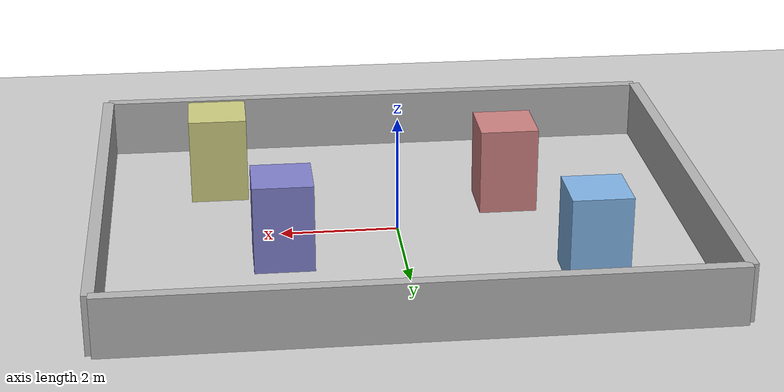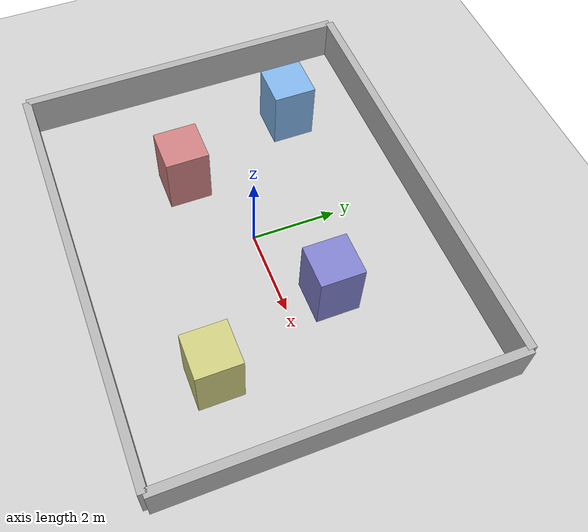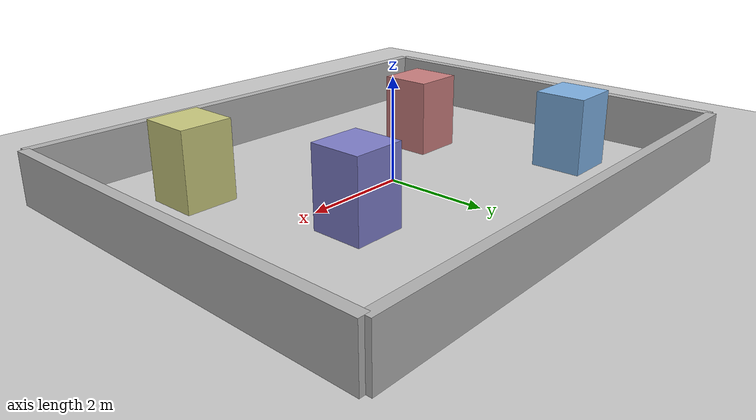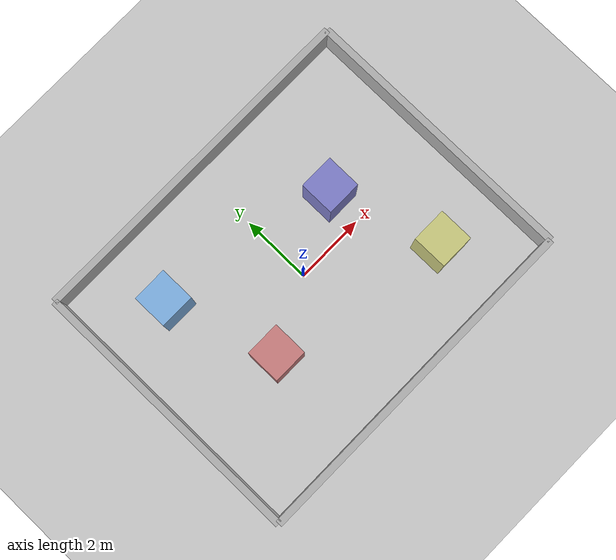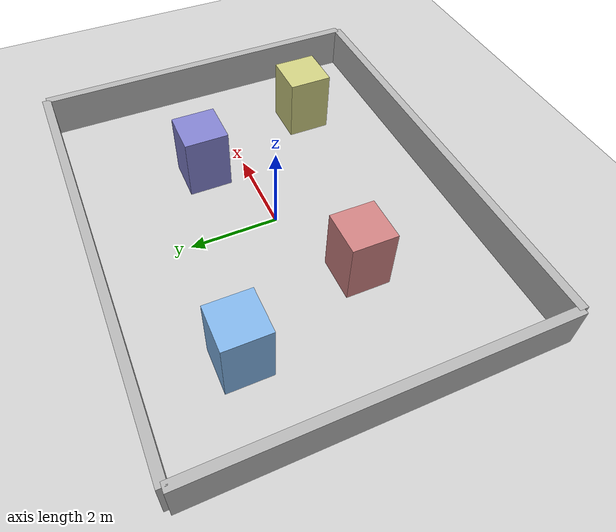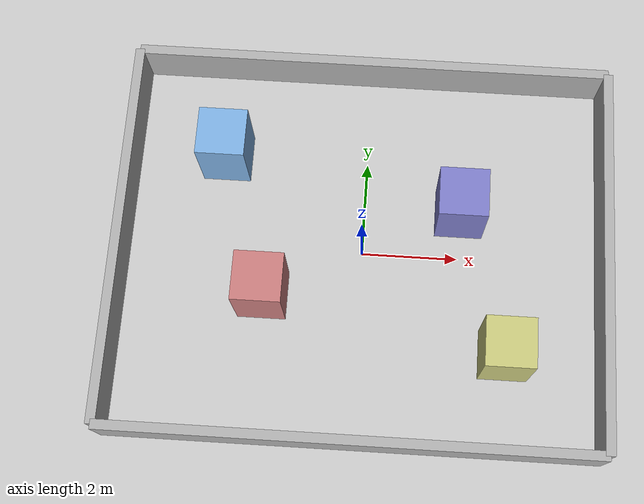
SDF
<?xml version="1.0" ?>
<sdf version="1.6">
  <world name="simple_room">

    <!-- Sun light -->
    <light name='sun' type='directional'>
      <cast_shadows>1</cast_shadows>
      <pose>0 0 10 0 -0 0</pose>
      <diffuse>0.8 0.8 0.8 1</diffuse>
      <specular>0.2 0.2 0.2 1</specular>
      <attenuation>
        <range>1000</range>
        <constant>0.9</constant>
        <linear>0.01</linear>
        <quadratic>0.001</quadratic>
      </attenuation>
      <direction>-0.5 0.1 -0.9</direction>
    </light>

    <!-- Ground plane -->
    <model name='ground_plane'>
      <static>1</static>
      <link name='link'>
        <collision name='collision'>
          <geometry>
            <plane>
              <normal>0 0 1</normal>
              <size>100 100</size>
            </plane>
          </geometry>
        </collision>
        <visual name='visual'>
          <geometry>
            <plane>
              <normal>0 0 1</normal>
              <size>100 100</size>
            </plane>
          </geometry>
          <material>
            <ambient>0.8 0.8 0.8 1</ambient>
            <diffuse>0.8 0.8 0.8 1</diffuse>
          </material>
        </visual>
      </link>
    </model>

    <!-- Simple rectangular room - 10m x 8m -->

    <!-- Wall 1 - North (long wall) -->
    <model name='wall_north'>
      <static>1</static>
      <pose>0 4 0.5 0 0 0</pose>
      <link name='link'>
        <collision name='collision'>
          <geometry>
            <box>
              <size>10 0.2 1</size>
            </box>
          </geometry>
        </collision>
        <visual name='visual'>
          <geometry>
            <box>
              <size>10 0.2 1</size>
            </box>
          </geometry>
          <material>
            <ambient>0.7 0.7 0.7 1</ambient>
            <diffuse>0.7 0.7 0.7 1</diffuse>
          </material>
        </visual>
      </link>
    </model>

    <!-- Wall 2 - South (long wall) -->
    <model name='wall_south'>
      <static>1</static>
      <pose>0 -4 0.5 0 0 0</pose>
      <link name='link'>
        <collision name='collision'>
          <geometry>
            <box>
              <size>10 0.2 1</size>
            </box>
          </geometry>
        </collision>
        <visual name='visual'>
          <geometry>
            <box>
              <size>10 0.2 1</size>
            </box>
          </geometry>
          <material>
            <ambient>0.7 0.7 0.7 1</ambient>
            <diffuse>0.7 0.7 0.7 1</diffuse>
          </material>
        </visual>
      </link>
    </model>

    <!-- Wall 3 - East (short wall) -->
    <model name='wall_east'>
      <static>1</static>
      <pose>5 0 0.5 0 0 1.5708</pose>
      <link name='link'>
        <collision name='collision'>
          <geometry>
            <box>
              <size>8 0.2 1</size>
            </box>
          </geometry>
        </collision>
        <visual name='visual'>
          <geometry>
            <box>
              <size>8 0.2 1</size>
            </box>
          </geometry>
          <material>
            <ambient>0.7 0.7 0.7 1</ambient>
            <diffuse>0.7 0.7 0.7 1</diffuse>
          </material>
        </visual>
      </link>
    </model>

    <!-- Wall 4 - West (short wall) -->
    <model name='wall_west'>
      <static>1</static>
      <pose>-5 0 0.5 0 0 1.5708</pose>
      <link name='link'>
        <collision name='collision'>
          <geometry>
            <box>
              <size>8 0.2 1</size>
            </box>
          </geometry>
        </collision>
        <visual name='visual'>
          <geometry>
            <box>
              <size>8 0.2 1</size>
            </box>
          </geometry>
          <material>
            <ambient>0.7 0.7 0.7 1</ambient>
            <diffuse>0.7 0.7 0.7 1</diffuse>
          </material>
        </visual>
      </link>
    </model>

    <!-- Five larger obstacles -->
    <model name='box_obstacle_1'>
      <static>1</static>
      <pose>2 1 0.75 0 0 0</pose>
      <link name='link'>
        <collision name='collision'>
          <geometry>
            <box>
              <size>1.0 1.0 1.5</size>
            </box>
          </geometry>
        </collision>
        <visual name='visual'>
          <geometry>
            <box>
              <size>1.0 1.0 1.5</size>
            </box>
          </geometry>
          <material>
            <ambient>0.5 0.5 0.8 1</ambient>
            <diffuse>0.5 0.5 0.8 1</diffuse>
          </material>
        </visual>
      </link>
    </model>

    <model name='box_obstacle_2'>
      <static>1</static>
      <pose>-2 -1 0.75 0 0 0</pose>
      <link name='link'>
        <collision name='collision'>
          <geometry>
            <box>
              <size>1.0 1.0 1.5</size>
            </box>
          </geometry>
        </collision>
        <visual name='visual'>
          <geometry>
            <box>
              <size>1.0 1.0 1.5</size>
            </box>
          </geometry>
          <material>
            <ambient>0.8 0.5 0.5 1</ambient>
            <diffuse>0.8 0.5 0.5 1</diffuse>
          </material>
        </visual>
      </link>
    </model>

    <model name='box_obstacle_4'>
      <static>1</static>
      <pose>3 -2 0.75 0 0 0</pose>
      <link name='link'>
        <collision name='collision'>
          <geometry>
            <box>
              <size>1.0 1.0 1.5</size>
            </box>
          </geometry>
        </collision>
        <visual name='visual'>
          <geometry>
            <box>
              <size>1.0 1.0 1.5</size>
            </box>
          </geometry>
          <material>
            <ambient>0.8 0.8 0.5 1</ambient>
            <diffuse>0.8 0.8 0.5 1</diffuse>
          </material>
        </visual>
      </link>
    </model>

    <model name='box_obstacle_5'>
      <static>1</static>
      <pose>-3 2 0.75 0 0 0</pose>
      <link name='link'>
        <collision name='collision'>
          <geometry>
            <box>
              <size>1.0 1.0 1.5</size>
            </box>
          </geometry>
        </collision>
        <visual name='visual'>
          <geometry>
            <box>
              <size>1.0 1.0 1.5</size>
            </box>
          </geometry>
          <material>
            <ambient>0.5 0.7 0.9 1</ambient>
            <diffuse>0.5 0.7 0.9 1</diffuse>
          </material>
        </visual>
      </link>
    </model>

    <!-- Physics -->
    <physics type="ode">
      <max_step_size>0.001</max_step_size>
      <real_time_factor>1</real_time_factor>
      <real_time_update_rate>1000</real_time_update_rate>
    </physics>

    <scene>
      <ambient>0.4 0.4 0.4 1</ambient>
      <background>0.7 0.7 0.7 1</background>
      <shadows>1</shadows>
    </scene>

  </world>
</sdf>
